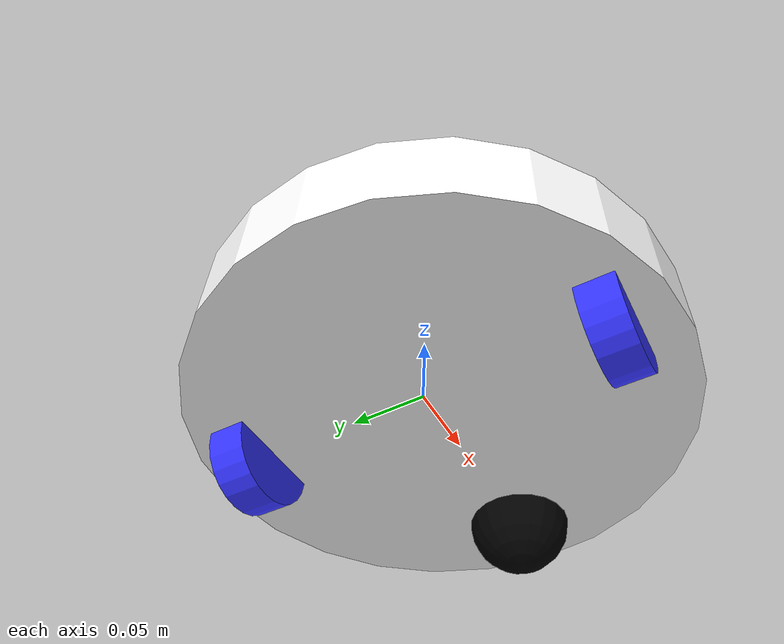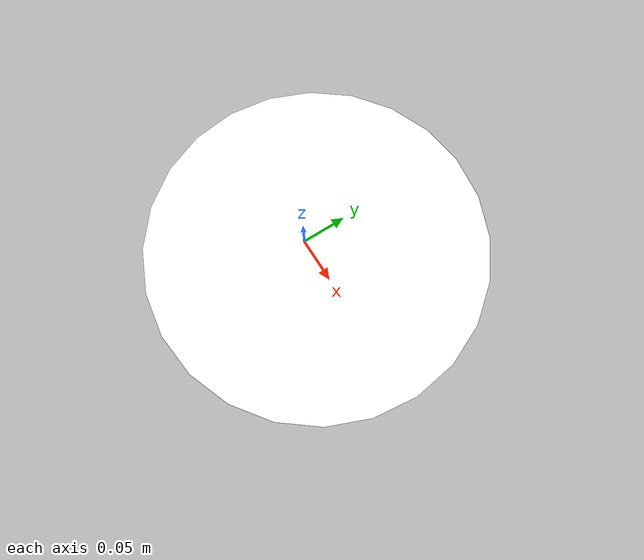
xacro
<?xml version="1.0"?>
<robot xmlns:xacro="http://www.ros.org/wiki/xacro" >

    <xacro:include filename="inertial_macros.xacro" />

    <material name="white">
        <color rgba="1 1 1 1" />
    </material>

    <material name="orange">
        <color rgba="1 0.3 0.1 1" />
    </material>

    <material name="blue">
        <color rgba="0.2 0.2 1 1" />
    </material>

    <material name="black">
        <color rgba="0 0 0 1" />
    </material>

    <!-- BASE LINK -->

    <link name="base_link">

    </link>

    <!-- CHASSIS LINK -->

    <joint name="chassis_joint" type="fixed">
        <parent link="base_link" />
        <child link="chassis" />
        <origin xyz="-0.11 0 0" />
    </joint>

    <link name="chassis">
        <visual>
            <origin xyz="0.135 0 0.03" />
            <geometry>
                <cylinder radius="0.165" length="0.06" />
            </geometry>
            <material name="white" />
        </visual>

        <collision>
            <origin xyz="0.135 0 0.03" />
            <geometry>
                <cylinder radius="0.165" length="0.06" />
            </geometry>
        </collision>

        <xacro:inertial_cylinder mass="1" length="0.06" radius="0.165">
            <origin xyz="0.135 0 0.03" rpy="0 0 0"/>
        </xacro:inertial_cylinder>

    </link>

    <!-- LEFT WHEEL LINK -->

    <joint name="left_wheel_joint" type="continuous">
        <parent link="base_link" />
        <child link="left_wheel" />
        <origin xyz="0 0.125 0" rpy="-${pi/2} 0 0" />
        <axis xyz="0 0 1" />
    </joint>

    <link name="left_wheel">
        <visual>
            <geometry>
                <cylinder radius="0.035" length="0.025" />
            </geometry>
            <material name="blue" />
        </visual>

        <collision>
            <geometry>
                <cylinder radius="0.035" length="0.025" />
            </geometry>
        </collision>

        <xacro:inertial_cylinder mass="0.1" length="0.025" radius="0.035" >
            <origin xyz="0 0 0" rpy="0 0 0"/>
        </xacro:inertial_cylinder>

    </link>

    <!-- RIGHT WHEEL LINK -->

    <joint name="right_wheel_joint" type="continuous">
        <parent link="base_link" />
        <child link="right_wheel" />
        <origin xyz="0 -0.125 0" rpy="${pi/2} 0 0" />
        <axis xyz="0 0 -1" />
    </joint>

    <link name="right_wheel">
        <visual>
            <geometry>
                <cylinder radius="0.035" length="0.025" />
            </geometry>
            <material name="blue" />
        </visual>

        <collision>
            <geometry>
                <cylinder radius="0.035" length="0.025" />
            </geometry>
        </collision>

        <xacro:inertial_cylinder mass="0.1" length="0.025" radius="0.035" >
            <origin xyz="0 0 0" rpy="0 0 0"/>
        </xacro:inertial_cylinder>

    </link>

    <!-- CASTER WHEEL LINK -->

    <joint name="caster_wheel_joint" type="fixed">
        <parent link="chassis" />
        <child link="caster_wheel" />
        <origin xyz="0.255 0 0"/>
    </joint>

    <link name="caster_wheel">
        <visual>
            <geometry>
                <sphere radius="0.035" />
            </geometry>
            <material name="black" />
        </visual>

        <collision>
            <geometry>
                <sphere radius="0.035" />
            </geometry>
        </collision>

        <xacro:inertial_sphere mass="0.1" radius="0.035" >
            <origin xyz="0 0 0" rpy="0 0 0" />
        </xacro:inertial_sphere>

    </link>

</robot>
